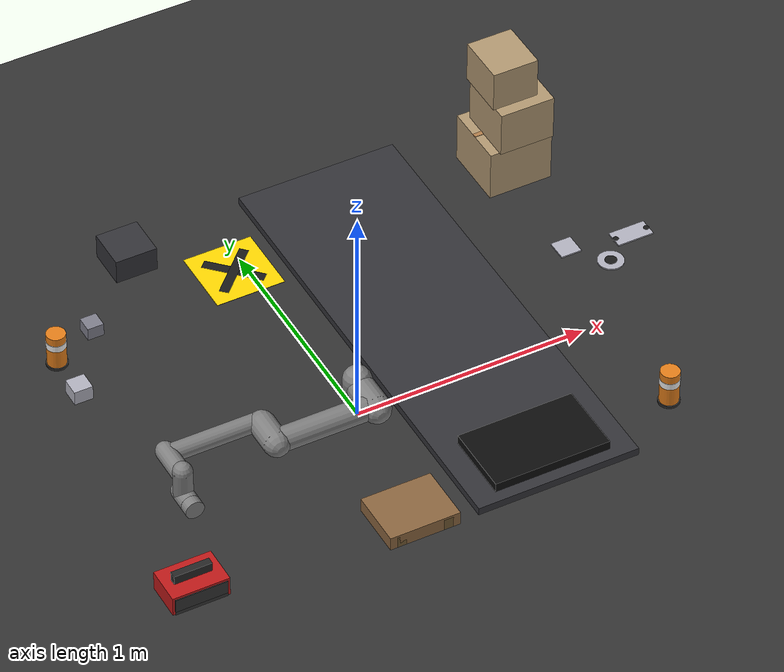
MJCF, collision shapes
<mujoco model="ur5e_scene">

  <!-- Include robot arm -->
  <include file="ur5e.xml"/>

  <statistic center="0.4 0 0.4" extent="0.8"/>

  <!-- Balanced lighting and visuals -->
  <visual>
    <headlight diffuse="0.8 0.8 0.8" ambient="0.25 0.25 0.25" specular="0.4 0.4 0.4"/>
    <rgba haze="0.1 0.15 0.2 1"/> <!-- soft blue-gray haze -->
    <global azimuth="125" elevation="-25"/>
  </visual>

  <asset>
    <!-- Softer blue gradient background -->
    <texture type="skybox" builtin="gradient" rgb1="0.55 0.7 0.85" rgb2="0.1 0.15 0.2"
            width="512" height="3072"/>

    <!-- Ground / floor texture -->
    <texture type="2d" name="groundplane" builtin="checker" rgb1="0.25 0.25 0.25" rgb2="0.15 0.15 0.15"
            mark="edge" markrgb="0.4 0.4 0.4" width="300" height="300"/>
    <material name="groundplane" texture="groundplane" texuniform="true" texrepeat="6 6" reflectance="0.1"/>

    <!-- Conveyor -->
    <texture file="textures/conveyor.png" type="2d" name="conveyorbelt"/>
    <material name="conveyor" reflectance="0.15" texrepeat="4 5" texture="conveyorbelt" texuniform="true"/>

    <!-- Materials -->
    <material name="black_box" rgba="0.05 0.05 0.05 1" reflectance="0.05" shininess="0.2"/>
    <material name="metal_sheet" rgba="0.7 0.7 0.75 1" reflectance="0.4" shininess="0.6"/>
    <material name="dark_metal" rgba="0.2 0.2 0.22 1" reflectance="0.3" shininess="0.5"/>
    <material name="cardboard" rgba="0.7 0.6 0.45 1" reflectance="0.05" shininess="0.1"/>
    <material name="safety_yellow" rgba="1 0.85 0 1" reflectance="0.2" shininess="0.3"/>
    <material name="safety_black" rgba="0.1 0.1 0.1 1" reflectance="0.1" shininess="0.2"/>
    <material name="red_toolbox" rgba="0.75 0.1 0.1 1" reflectance="0.4" shininess="0.5"/>
    <material name="orange" rgba="0.9 0.5 0.1 1" reflectance="0.2" shininess="0.3"/>
  </asset>

  <worldbody>
    <!-- Overhead light -->
    <light pos="0 0 2.0" dir="0 0 -1" diffuse="1 1 1" specular="0.3 0.3 0.3" directional="true"/>

    <!-- Floor plane -->
    <geom name="floor" type="plane" size="0 0 0.05" material="groundplane"/>

    <!-- Table under the conveyor -->
    <body name="table" pos="0.5 0.3 -0.05">
      <!-- Table top -->
      <geom name="table_top" type="box" size="0.35 1.0 0.08" rgba="0.5 0.5 0.5 1" material="dark_metal"/>
    </body>

    <!-- Conveyor belt -->
    <body name="conveyor_floor" pos="0.5 0.3 0.035">
      <geom name="conveyor_geom" type="plane" size="0.35 1.0 0.01" material="conveyor" friction="1 1 1" contype="0" conaffinity="0"/>
    </body>

    <!-- Black box fully on top of belt -->
    <body name="box" pos="0.5 -0.5 0.05">
      <joint name="box_slide" type="slide" axis="0 1 0" limited="true" range="0 1.5"/>
      <geom type="box" size="0.25 0.15 0.02" mass="0.1" material="black_box"/>
    </body>

    <!-- 1. RED TOOLBOX -->
    <body name="toolbox" pos="-0.99 -0.55 0.002">
      <!-- Main toolbox body -->
      <geom type="box" size="0.12 0.08 0.08" material="red_toolbox" contype="0" conaffinity="0"/>
      <!-- Handle on top -->
      <geom type="box" size="0.08 0.015 0.02" pos="0 0 0.1" rgba="0.15 0.15 0.15 1" contype="0" conaffinity="0"/>
      <!-- Drawer details -->
      <geom type="box" size="0.11 0.002 0.03" pos="0 -0.082 0.04" rgba="0.2 0.2 0.2 1" contype="0" conaffinity="0"/>
      <geom type="box" size="0.11 0.002 0.03" pos="0 -0.082 -0.02" rgba="0.2 0.2 0.2 1" contype="0" conaffinity="0"/>
    </body>

    <!-- 2. CARDBOARD BOXES STACK -->
    <body name="cardboard_stack" pos="1.2 1.0 0.1">
      <geom type="box" size="0.14 0.14 0.12" material="cardboard" contype="0" conaffinity="0"/>
      <geom type="box" size="0.12 0.13 0.1" pos="0.02 -0.02 0.22" material="cardboard" contype="0" conaffinity="0"/>
      <geom type="box" size="0.1 0.11 0.09" pos="-0.01 0.01 0.41" material="cardboard" contype="0" conaffinity="0"/>
      <geom type="box" size="0.14 0.01 0.001" pos="0 0 0.121" rgba="0.7 0.5 0.3 1" contype="0" conaffinity="0"/>
    </body>

    <!-- 3. FLOOR SAFETY SIGN -->
    <body name="floor_warning" pos="-0.05 0.95 0.002">
      <geom type="box" size="0.15 0.15 0.001" material="safety_yellow" contype="0" conaffinity="0"/>
      <geom type="box" size="0.13 0.02 0.002" quat="0.924 0 0 0.383" material="safety_black" contype="0" conaffinity="0"/>
      <geom type="box" size="0.13 0.02 0.002" quat="0.924 0 0 -0.383" material="safety_black" contype="0" conaffinity="0"/>
    </body>

    <!-- 4. SCATTERED CUT METAL PARTS -->
    <body name="cut_parts_area" pos="1.3 0.3 0.005">
      <!-- Circular cut part -->
      <geom type="cylinder" size="0.055 0.003" pos="0 0 0" material="metal_sheet" contype="0" conaffinity="0"/>
      <geom type="cylinder" size="0.025 0.004" pos="0 0 0" rgba="0.1 0.1 0.1 1" contype="0" conaffinity="0"/>

      <!-- Rectangular bracket -->
      <geom type="box" size="0.08 0.04 0.003" pos="0.15 0.1 0" material="metal_sheet" contype="0" conaffinity="0"/>
      <geom type="cylinder" size="0.012 0.004" pos="0.08 0.1 0" rgba="0.1 0.1 0.1 1" contype="0" conaffinity="0"/>
      <geom type="cylinder" size="0.012 0.004" pos="0.22 0.1 0" rgba="0.1 0.1 0.1 1" contype="0" conaffinity="0"/>

      <!-- Small square part -->
      <geom type="box" size="0.045 0.045 0.003" pos="-0.12 0.15 0" material="metal_sheet" contype="0" conaffinity="0"/>
    </body>

    <!-- 5. ORANGE TRAFFIC CONES -->
    <body name="cone_left" pos="-0.9 0.8 0.08">
      <geom type="cylinder" size="0.04 0.08" material="orange" contype="0" conaffinity="0"/>
      <geom type="cylinder" size="0.045 0.005" pos="0 0 -0.075" rgba="0.2 0.2 0.2 1" contype="0" conaffinity="0"/>
      <!-- White stripe -->
      <geom type="cylinder" size="0.041 0.015" pos="0 0 0.03" rgba="0.95 0.95 0.95 1" contype="0" conaffinity="0"/>
    </body>

    <body name="cone_right" pos="1.1 -0.5 0.08">
      <geom type="cylinder" size="0.04 0.08" material="orange" contype="0" conaffinity="0"/>
      <geom type="cylinder" size="0.045 0.005" pos="0 0 -0.075" rgba="0.2 0.2 0.2 1" contype="0" conaffinity="0"/>
      <!-- White stripe -->
      <geom type="cylinder" size="0.041 0.015" pos="0 0 0.03" rgba="0.95 0.95 0.95 1" contype="0" conaffinity="0"/>
    </body>

    <!-- 6. cut objects) -->
    <body name="cube_1" pos="-0.4 1.2 0.015">
      <geom type="box" size="0.09 0.09 0.09" material="dark_metal" contype="0" conaffinity="0"/>
    </body>

    <body name="cube_2" pos="-0.9 0.6 0.02">
      <geom type="box" size="0.04 0.04 0.04" material="metal_sheet" contype="0" conaffinity="0"/>
    </body>

    <body name="cube_3" pos="-0.7 0.9 0.018">
      <geom type="box" size="0.035 0.035 0.035" rgba="0.5 0.5 0.55 1" contype="0" conaffinity="0"/>
    </body>

    <!-- 7. PALLET in far corner -->
    <body name="wooden_pallet" pos="-0.09 -0.6 0.04">
      <!-- Pallet slats -->
      <geom type="box" size="0.15 0.12 0.03" rgba="0.55 0.4 0.25 1" contype="0" conaffinity="0"/>
      <geom type="box" size="0.02 0.12 0.025" pos="-0.1 0 -0.005" rgba="0.45 0.35 0.2 1" contype="0" conaffinity="0"/>
      <geom type="box" size="0.02 0.12 0.025" pos="0.1 0 -0.005" rgba="0.45 0.35 0.2 1" contype="0" conaffinity="0"/>
    </body>

  </worldbody>

</mujoco>

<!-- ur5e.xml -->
<mujoco model="ur5e">
  <compiler angle="radian" meshdir="assets" autolimits="true"/>

  <option integrator="implicitfast"/>

  <default>
    <default class="ur5e">
      <material specular="0.5" shininess="0.25"/>
      <joint axis="0 1 0" range="-6.28319 6.28319" armature="0.1"/>
      <general gaintype="fixed" biastype="affine" ctrlrange="-6.2831 6.2831" gainprm="2000" biasprm="0 -2000 -400"
        forcerange="-150 150"/>
      <default class="size3">
        <default class="size3_limited">
          <joint range="-3.1415 3.1415"/>
          <general ctrlrange="-3.1415 3.1415"/>
        </default>
      </default>
      <default class="size1">
        <general gainprm="500" biasprm="0 -500 -100" forcerange="-28 28"/>
      </default>
      <default class="visual">
        <geom type="mesh" contype="0" conaffinity="0" group="2"/>
      </default>
      <default class="collision">
        <geom type="capsule" group="3"/>
        <default class="eef_collision">
          <geom type="cylinder"/>
        </default>
      </default>
      <site size="0.001" rgba="0.5 0.5 0.5 0.3" group="4"/>
    </default>
  </default>

  <asset>
    <material class="ur5e" name="black" rgba="0.033 0.033 0.033 1"/>
    <material class="ur5e" name="jointgray" rgba="0.278 0.278 0.278 1"/>
    <material class="ur5e" name="linkgray" rgba="0.82 0.82 0.82 1"/>
    <material class="ur5e" name="urblue" rgba="0.49 0.678 0.8 1"/>

    <mesh file="base_0.obj"/>
    <mesh file="base_1.obj"/>
    <mesh file="shoulder_0.obj"/>
    <mesh file="shoulder_1.obj"/>
    <mesh file="shoulder_2.obj"/>
    <mesh file="upperarm_0.obj"/>
    <mesh file="upperarm_1.obj"/>
    <mesh file="upperarm_2.obj"/>
    <mesh file="upperarm_3.obj"/>
    <mesh file="forearm_0.obj"/>
    <mesh file="forearm_1.obj"/>
    <mesh file="forearm_2.obj"/>
    <mesh file="forearm_3.obj"/>
    <mesh file="wrist1_0.obj"/>
    <mesh file="wrist1_1.obj"/>
    <mesh file="wrist1_2.obj"/>
    <mesh file="wrist2_0.obj"/>
    <mesh file="wrist2_1.obj"/>
    <mesh file="wrist2_2.obj"/>
    <mesh file="wrist3.obj"/>
  </asset>

  <worldbody>
    <light name="spotlight" mode="targetbodycom" target="wrist_2_link" pos="0 -1 2"/>
    <body name="base" quat="0 0 0 -1" childclass="ur5e">
      <inertial mass="4.0" pos="0 0 0" diaginertia="0.00443333156 0.00443333156 0.0072"/>
      <geom mesh="base_0" material="black" class="visual"/>
      <geom mesh="base_1" material="jointgray" class="visual"/>
      <body name="shoulder_link" pos="0 0 0.163">
        <inertial mass="3.7" pos="0 0 0" diaginertia="0.0102675 0.0102675 0.00666"/>
        <joint name="shoulder_pan_joint" class="size3" axis="0 0 1"/>
        <geom mesh="shoulder_0" material="urblue" class="visual"/>
        <geom mesh="shoulder_1" material="black" class="visual"/>
        <geom mesh="shoulder_2" material="jointgray" class="visual"/>
        <geom class="collision" size="0.06 0.06" pos="0 0 -0.04"/>
        <body name="upper_arm_link" pos="0 0.138 0" quat="1 0 1 0">
          <inertial mass="8.393" pos="0 0 0.2125" diaginertia="0.133886 0.133886 0.0151074"/>
          <joint name="shoulder_lift_joint" class="size3"/>
          <geom mesh="upperarm_0" material="linkgray" class="visual"/>
          <geom mesh="upperarm_1" material="black" class="visual"/>
          <geom mesh="upperarm_2" material="jointgray" class="visual"/>
          <geom mesh="upperarm_3" material="urblue" class="visual"/>
          <geom class="collision" pos="0 -0.04 0" quat="1 1 0 0" size="0.06 0.06"/>
          <geom class="collision" size="0.05 0.2" pos="0 0 0.2"/>
          <body name="forearm_link" pos="0 -0.131 0.425">
            <inertial mass="2.275" pos="0 0 0.196" diaginertia="0.0311796 0.0311796 0.004095"/>
            <joint name="elbow_joint" class="size3_limited"/>
            <geom mesh="forearm_0" material="urblue" class="visual"/>
            <geom mesh="forearm_1" material="linkgray" class="visual"/>
            <geom mesh="forearm_2" material="black" class="visual"/>
            <geom mesh="forearm_3" material="jointgray" class="visual"/>
            <geom class="collision" pos="0 0.08 0" quat="1 1 0 0" size="0.055 0.06"/>
            <geom class="collision" size="0.038 0.19" pos="0 0 0.2"/>
            <body name="wrist_1_link" pos="0 0 0.392" quat="1 0 1 0">
              <inertial mass="1.219" pos="0 0.127 0" diaginertia="0.0025599 0.0025599 0.0021942"/>
              <joint name="wrist_1_joint" class="size1"/>
              <geom mesh="wrist1_0" material="black" class="visual"/>
              <geom mesh="wrist1_1" material="urblue" class="visual"/>
              <geom mesh="wrist1_2" material="jointgray" class="visual"/>
              <geom class="collision" pos="0 0.05 0" quat="1 1 0 0" size="0.04 0.07"/>
              <body name="wrist_2_link" pos="0 0.127 0">
                <inertial mass="1.219" pos="0 0 0.1" diaginertia="0.0025599 0.0025599 0.0021942"/>
                <joint name="wrist_2_joint" axis="0 0 1" class="size1"/>
                <geom mesh="wrist2_0" material="black" class="visual"/>
                <geom mesh="wrist2_1" material="urblue" class="visual"/>
                <geom mesh="wrist2_2" material="jointgray" class="visual"/>
                <geom class="collision" size="0.04 0.06" pos="0 0 0.04"/>
                <geom class="collision" pos="0 0.02 0.1" quat="1 1 0 0" size="0.04 0.04"/>
                <body name="wrist_3_link" pos="0 0 0.1">
                  <inertial mass="0.1889" pos="0 0.0771683 0" quat="1 0 0 1"
                    diaginertia="0.000132134 9.90863e-05 9.90863e-05"/>
                  <joint name="wrist_3_joint" class="size1"/>
                  <geom material="linkgray" mesh="wrist3" class="visual"/>
                  <geom class="eef_collision" pos="0 0.08 0" quat="1 1 0 0" size="0.04 0.02"/>
                  <site name="attachment_site" pos="0 0.1 0" quat="-1 1 0 0"/>
                </body>
              </body>
            </body>
          </body>
        </body>
      </body>
    </body>
  </worldbody>

  <actuator>
    <general class="size3" name="shoulder_pan" joint="shoulder_pan_joint"/>
    <general class="size3" name="shoulder_lift" joint="shoulder_lift_joint"/>
    <general class="size3_limited" name="elbow" joint="elbow_joint"/>
    <general class="size1" name="wrist_1" joint="wrist_1_joint"/>
    <general class="size1" name="wrist_2" joint="wrist_2_joint"/>
    <general class="size1" name="wrist_3" joint="wrist_3_joint"/>
  </actuator>

  <keyframe>
    <key name="home" qpos="-1.5708 -1.5708 1.5708 -1.5708 -1.5708 0 0" ctrl="-1.5708 -1.5708 1.5708 -1.5708 -1.5708 0"/>
  </keyframe>
</mujoco>
